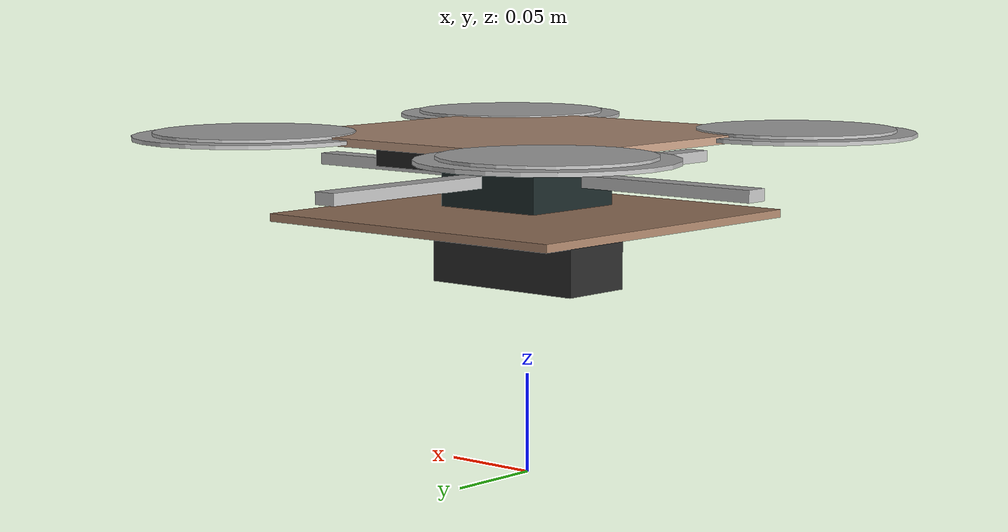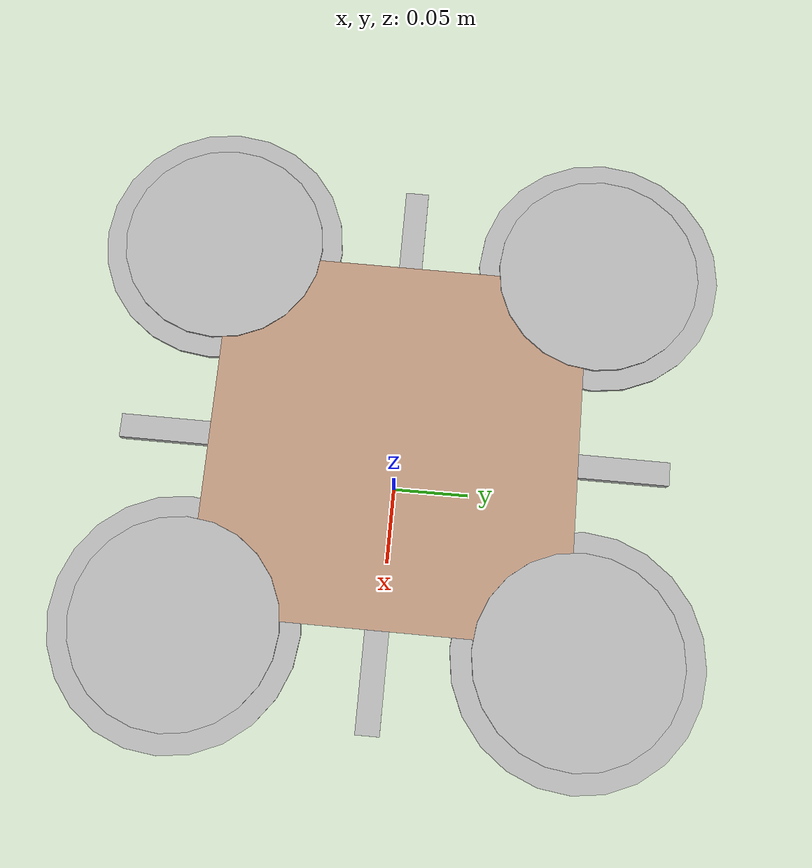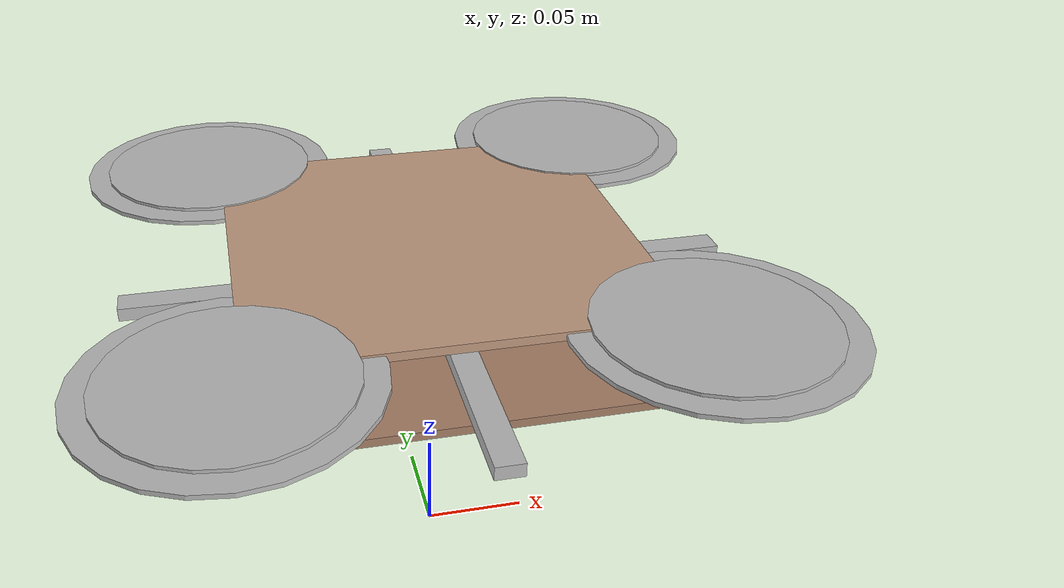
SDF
<?xml version="1.0" ?>
<sdf version="1.9">
  <model name="rex_quadcopter_14">
    <static>false</static>

    <!-- Main body link -->
    <link name="base_link">
      <pose>0 0 0.15 0 0 0</pose>

      <inertial>
        <mass>0.3</mass>
        <inertia>
          <ixx>0.001</ixx>
          <iyy>0.001</iyy>
          <izz>0.002</izz>
          <ixy>0</ixy>
          <ixz>0</ixz>
          <iyz>0</iyz>
        </inertia>
      </inertial>

      <!-- Disable gravity on the link (re-enable when you add rotors) -->
      <gravity>false</gravity>

      <!-- Add damping so the "hovering" robot doesn't drift forever after cmd_vel goes to zero. -->
      <velocity_decay>
        <linear>1.0</linear>
        <angular>1.0</angular>
      </velocity_decay>

      <!-- Simple collision box -->
      <collision name="body_collision">
        <geometry>
          <box>
            <size>0.15 0.15 0.05</size>
          </box>
        </geometry>
      </collision>

      <!-- ===================== FRAME (dual plates) ===================== -->
      <visual name="frame_top">
        <pose>0 0 0.020 0 0 0</pose>
        <geometry><box><size>0.18 0.18 0.004</size></box></geometry>
        <material>
          <ambient>0.65 0.55 0.45 1</ambient>
          <diffuse>0.75 0.60 0.50 1</diffuse>
          <specular>0.05 0.05 0.05 1</specular>
        </material>
      </visual>
      <visual name="frame_bottom">
        <pose>0 0 -0.020 0 0 0</pose>
        <geometry><box><size>0.18 0.18 0.004</size></box></geometry>
        <material>
          <ambient>0.55 0.45 0.35 1</ambient>
          <diffuse>0.65 0.50 0.40 1</diffuse>
          <specular>0.05 0.05 0.05 1</specular>
        </material>
      </visual>

      <!-- ===================== ARMS (slim bars) ===================== -->
      <visual name="arm_front">
        <pose>0.09 0 0 0 0 0</pose>
        <geometry><box><size>0.10 0.012 0.006</size></box></geometry>
      </visual>
      <visual name="arm_back">
        <pose>-0.09 0 0 0 0 0</pose>
        <geometry><box><size>0.10 0.012 0.006</size></box></geometry>
      </visual>
      <visual name="arm_left">
        <pose>0 0.09 0 0 0 1.5708</pose>
        <geometry><box><size>0.10 0.012 0.006</size></box></geometry>
      </visual>
      <visual name="arm_right">
        <pose>0 -0.09 0 0 0 1.5708</pose>
        <geometry><box><size>0.10 0.012 0.006</size></box></geometry>
      </visual>

      <!-- ===================== ELECTRONICS STACK ===================== -->
      <visual name="electronics_stack">
        <pose>0 0 0.00 0 0 0</pose>
        <geometry><box><size>0.06 0.06 0.03</size></box></geometry>
        <material>
          <ambient>0.08 0.10 0.10 1</ambient>
          <diffuse>0.10 0.15 0.15 1</diffuse>
          <specular>0.02 0.02 0.02 1</specular>
        </material>
      </visual>

      <!-- ===================== BATTERY ===================== -->
      <visual name="battery">
        <pose>0 0 -0.040 0 0 0</pose>
        <geometry><box><size>0.09 0.04 0.03</size></box></geometry>
        <material>
          <ambient>0.10 0.10 0.10 1</ambient>
          <diffuse>0.15 0.15 0.15 1</diffuse>
        </material>
      </visual>

      <!-- ===================== CAMERA / SENSOR POD ===================== -->
      <visual name="sensor_pod">
        <pose>0.07 0 0.01 0 0 0</pose>
        <geometry><box><size>0.04 0.03 0.02</size></box></geometry>
        <material>
          <ambient>0.08 0.08 0.08 1</ambient>
          <diffuse>0.12 0.12 0.12 1</diffuse>
        </material>
      </visual>

      <!-- ===================== PROPELLER GUARDS (thin rings) ===================== -->
      <visual name="guard_fr">
        <pose> 0.095 0.095 0.020 0 0 0</pose>
        <geometry><cylinder><radius>0.060</radius><length>0.002</length></cylinder></geometry>
      </visual>
      <visual name="guard_fl">
        <pose>-0.095 0.095 0.020 0 0 0</pose>
        <geometry><cylinder><radius>0.060</radius><length>0.002</length></cylinder></geometry>
      </visual>
      <visual name="guard_br">
        <pose> 0.095 -0.095 0.020 0 0 0</pose>
        <geometry><cylinder><radius>0.060</radius><length>0.002</length></cylinder></geometry>
      </visual>
      <visual name="guard_bl">
        <pose>-0.095 -0.095 0.020 0 0 0</pose>
        <geometry><cylinder><radius>0.060</radius><length>0.002</length></cylinder></geometry>
      </visual>

      <!-- ===================== PROPELLERS (flat disks) ===================== -->
      <visual name="prop_fr">
        <pose> 0.095 0.095 0.022 0 0 0</pose>
        <geometry><cylinder><radius>0.050</radius><length>0.0015</length></cylinder></geometry>
      </visual>
      <visual name="prop_fl">
        <pose>-0.095 0.095 0.022 0 0 0</pose>
        <geometry><cylinder><radius>0.050</radius><length>0.0015</length></cylinder></geometry>
      </visual>
      <visual name="prop_br">
        <pose> 0.095 -0.095 0.022 0 0 0</pose>
        <geometry><cylinder><radius>0.050</radius><length>0.0015</length></cylinder></geometry>
      </visual>
      <visual name="prop_bl">
        <pose>-0.095 -0.095 0.022 0 0 0</pose>
        <geometry><cylinder><radius>0.050</radius><length>0.0015</length></cylinder></geometry>
      </visual>

      <!-- ===================== BLUE STATUS LED ===================== -->
      <visual name="status_led">
        <pose>0 0 -0.018 0 0 0</pose>
        <geometry><sphere><radius>0.006</radius></sphere></geometry>
      </visual>

      <!-- ===================== 8 RAY-BASED RANGE SENSORS ===================== -->
      <!-- Simple laser beams publishing LaserScan messages for debugging. -->
      <sensor name="tof_front" type="gpu_lidar">
        <pose>0.12 0 0 0 0 0</pose>
        <lidar>
          <scan>
            <horizontal>
              <samples>8</samples>
              <resolution>1</resolution>
              <min_angle>-0.5235987756</min_angle>
              <max_angle>0.5235987756</max_angle>
            </horizontal>
          </scan>
          <range>
            <min>0.05</min>
            <max>6.0</max>
            <resolution>0.001</resolution>
          </range>
        </lidar>
        <always_on>true</always_on>
        <update_rate>10</update_rate>
        <visualize>false</visualize>
      </sensor>

      <sensor name="tof_front_right" type="gpu_lidar">
        <pose>0.085 0.085 0 0 0 0.7853981634</pose>
        <lidar>
          <scan>
            <horizontal>
              <samples>8</samples>
              <resolution>1</resolution>
              <min_angle>-0.5235987756</min_angle>
              <max_angle>0.5235987756</max_angle>
            </horizontal>
          </scan>
          <range>
            <min>0.05</min>
            <max>6.0</max>
            <resolution>0.001</resolution>
          </range>
        </lidar>
        <always_on>true</always_on>
        <update_rate>10</update_rate>
        <visualize>false</visualize>
      </sensor>

      <sensor name="tof_right" type="gpu_lidar">
        <pose>0 0.12 0 0 0 1.5707963268</pose>
        <lidar>
          <scan>
            <horizontal>
              <samples>8</samples>
              <resolution>1</resolution>
              <min_angle>-0.5235987756</min_angle>
              <max_angle>0.5235987756</max_angle>
            </horizontal>
          </scan>
          <range>
            <min>0.05</min>
            <max>6.0</max>
            <resolution>0.001</resolution>
          </range>
        </lidar>
        <always_on>true</always_on>
        <update_rate>10</update_rate>
        <visualize>false</visualize>
      </sensor>

      <sensor name="tof_back_right" type="gpu_lidar">
        <pose>-0.085 0.085 0 0 0 2.3561944902</pose>
        <lidar>
          <scan>
            <horizontal>
              <samples>8</samples>
              <resolution>1</resolution>
              <min_angle>-0.5235987756</min_angle>
              <max_angle>0.5235987756</max_angle>
            </horizontal>
          </scan>
          <range>
            <min>0.05</min>
            <max>6.0</max>
            <resolution>0.001</resolution>
          </range>
        </lidar>
        <always_on>true</always_on>
        <update_rate>10</update_rate>
        <visualize>false</visualize>
      </sensor>

      <sensor name="tof_back" type="gpu_lidar">
        <pose>-0.12 0 0 0 0 3.1415926536</pose>
        <lidar>
          <scan>
            <horizontal>
              <samples>8</samples>
              <resolution>1</resolution>
              <min_angle>-0.5235987756</min_angle>
              <max_angle>0.5235987756</max_angle>
            </horizontal>
          </scan>
          <range>
            <min>0.05</min>
            <max>6.0</max>
            <resolution>0.001</resolution>
          </range>
        </lidar>
        <always_on>true</always_on>
        <update_rate>10</update_rate>
        <visualize>false</visualize>
      </sensor>

      <sensor name="tof_back_left" type="gpu_lidar">
        <pose>-0.085 -0.085 0 0 0 -2.3561944902</pose>
        <lidar>
          <scan>
            <horizontal>
              <samples>8</samples>
              <resolution>1</resolution>
              <min_angle>-0.5235987756</min_angle>
              <max_angle>0.5235987756</max_angle>
            </horizontal>
          </scan>
          <range>
            <min>0.05</min>
            <max>6.0</max>
            <resolution>0.001</resolution>
          </range>
        </lidar>
        <always_on>true</always_on>
        <update_rate>10</update_rate>
        <visualize>false</visualize>
      </sensor>

      <sensor name="tof_left" type="gpu_lidar">
        <pose>0 -0.12 0 0 0 -1.5707963268</pose>
        <lidar>
          <scan>
            <horizontal>
              <samples>8</samples>
              <resolution>1</resolution>
              <min_angle>-0.5235987756</min_angle>
              <max_angle>0.5235987756</max_angle>
            </horizontal>
          </scan>
          <range>
            <min>0.05</min>
            <max>6.0</max>
            <resolution>0.001</resolution>
          </range>
        </lidar>
        <always_on>true</always_on>
        <update_rate>10</update_rate>
        <visualize>false</visualize>
      </sensor>

      <sensor name="tof_front_left" type="gpu_lidar">
        <pose>0.085 -0.085 0 0 0 -0.7853981634</pose>
        <lidar>
          <scan>
            <horizontal>
              <samples>8</samples>
              <resolution>1</resolution>
              <min_angle>-0.5235987756</min_angle>
              <max_angle>0.5235987756</max_angle>
            </horizontal>
          </scan>
          <range>
            <min>0.05</min>
            <max>6.0</max>
            <resolution>0.001</resolution>
          </range>
        </lidar>
        <always_on>true</always_on>
        <update_rate>10</update_rate>
        <visualize>false</visualize>
      </sensor>

    </link>

    <!-- Velocity control and odometry plugins -->
    <plugin name="gz::sim::systems::VelocityControl" filename="gz-sim-velocity-control-system">
      <topic>/cmd_vel_robot14</topic>
      <use_world_frame>false</use_world_frame>
      <max_linear_velocity>3</max_linear_velocity>
      <max_angular_velocity>2</max_angular_velocity>
    </plugin>

    <plugin name="gz::sim::systems::OdometryPublisher" filename="gz-sim-odometry-publisher-system">
      <topic>/odom</topic>
      <frame_id>robot14/odom</frame_id>
      <child_frame_id>robot14/base_link</child_frame_id>
      <publish_tf>true</publish_tf>
    </plugin>

  </model>
</sdf>
